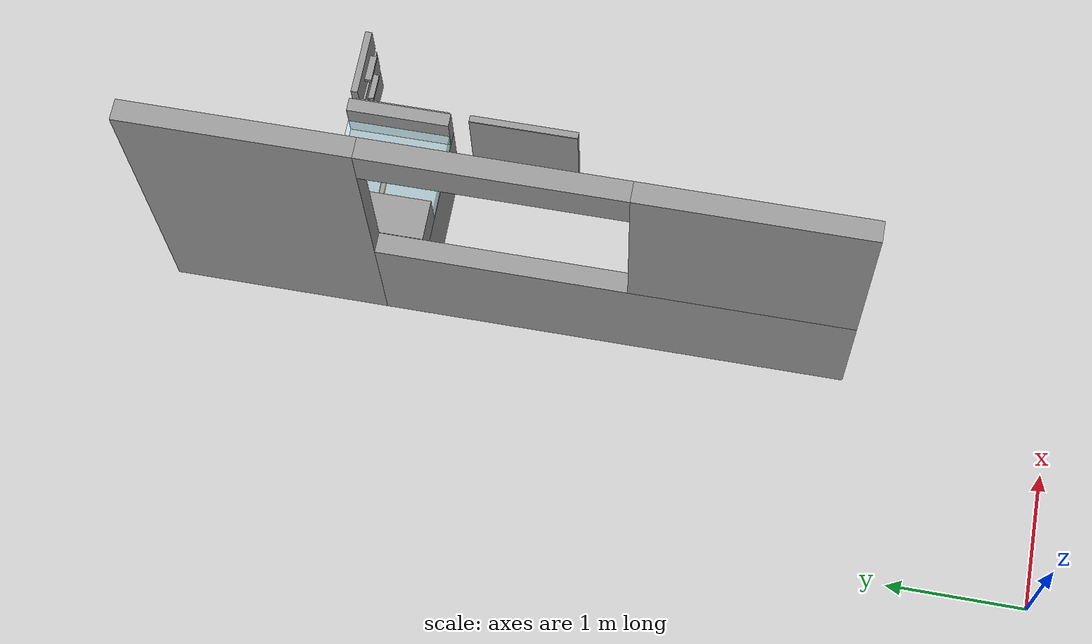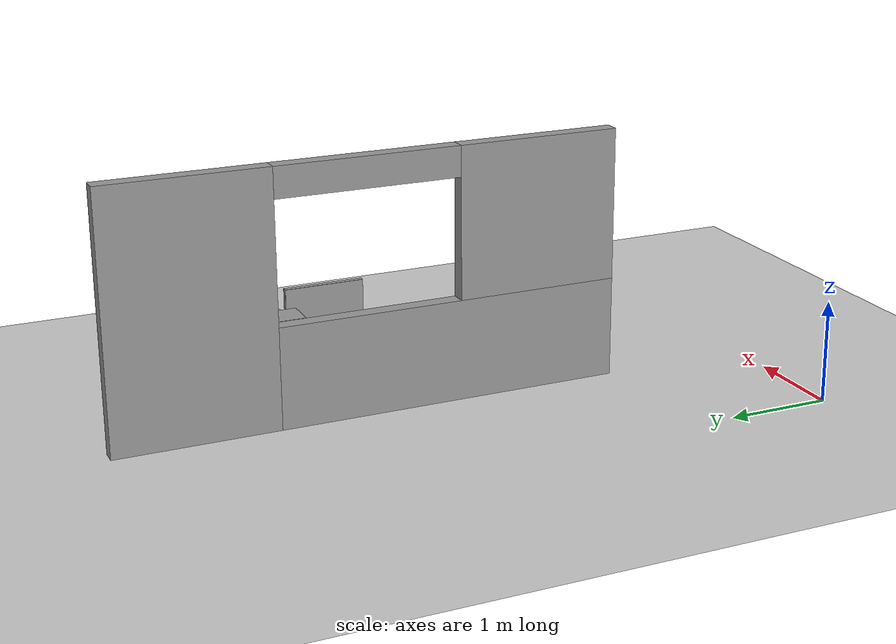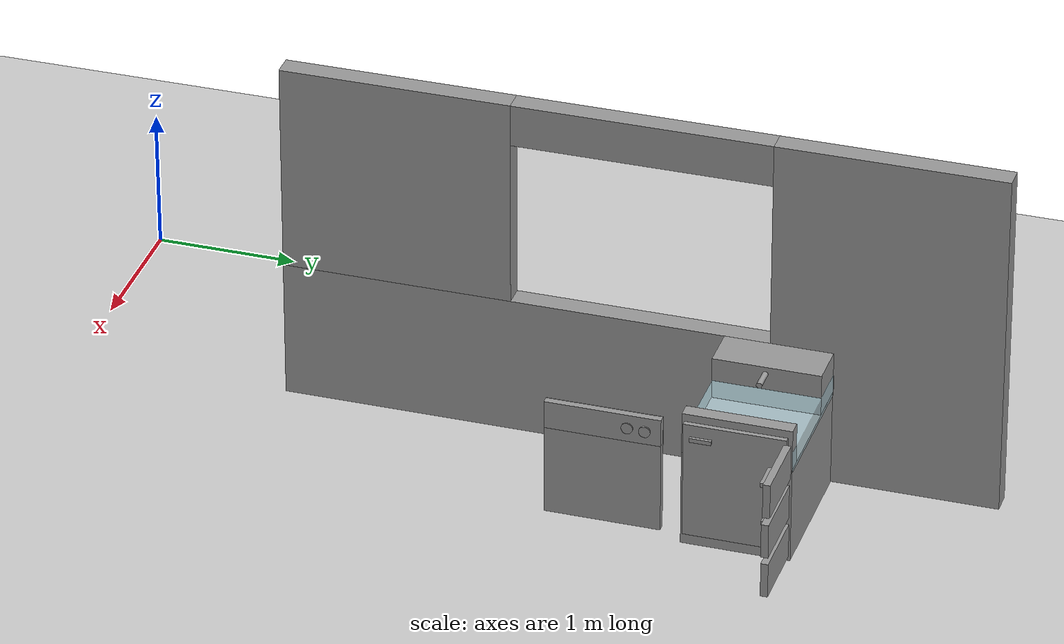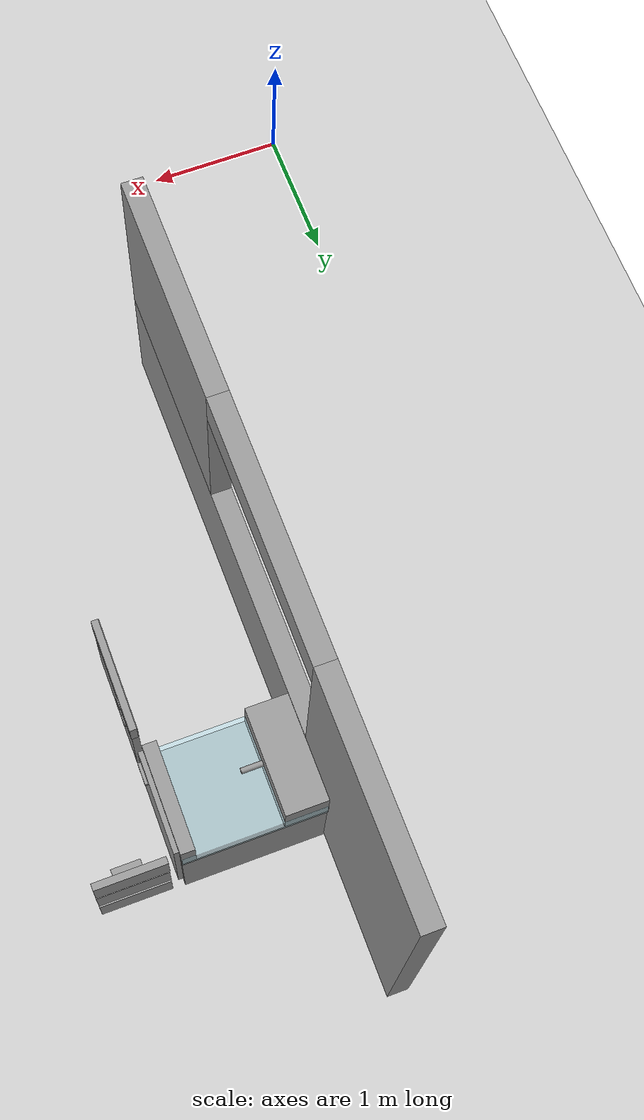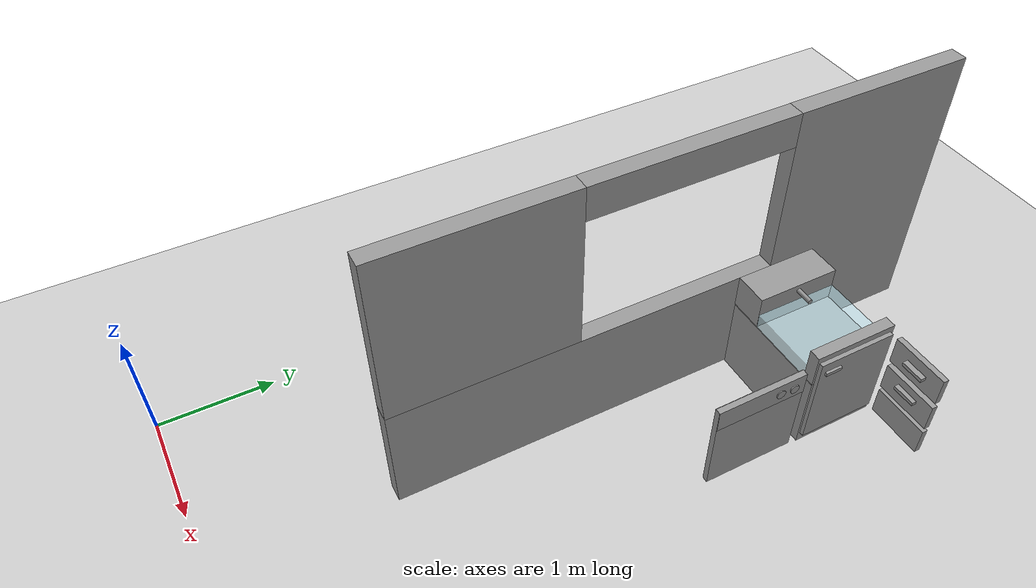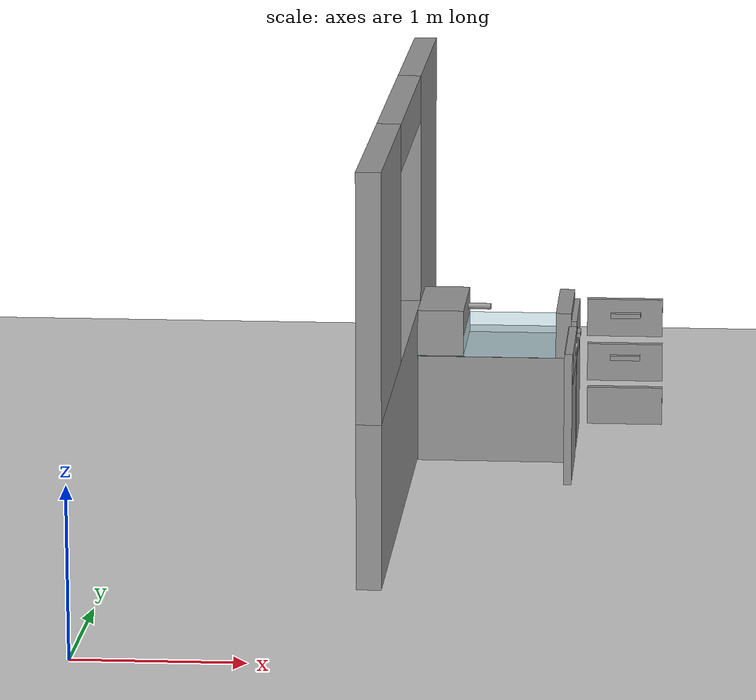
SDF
<sdf version="1.7">
 <world name="default">
  <model name="ground_plane">
   <static>1</static>
   <link name="link">
    <collision name="collision">
     <geometry><plane><normal>0 0 1</normal><size>100 100</size></plane></geometry>
     <surface>
      <contact><collide_bitmask>65535</collide_bitmask></contact>
      <friction><ode><mu>100</mu><mu2>50</mu2></ode></friction>
     </surface>
    </collision>
    <visual name="visual">
     <cast_shadows>0</cast_shadows>
     <geometry><plane><normal>0 0 1</normal><size>100 100</size></plane></geometry>
     <material>
      <script><uri>file://media/materials/scripts/gazebo.material</uri><name>Gazebo/Grey</name></script>
     </material>
    </visual>
   </link>
  </model>
  <model name="my_building_p4">
   <link name="Wall_42">
    <pose>1.575 1.04008 0 0 0 -1.5708</pose>
    <visual name="Wall_42_Visual_2">
     <pose>1.69623 0 1.75 0 -0 0</pose>
     <geometry><box><size>1.60754 0.15 1.5</size></box></geometry>
     <material>
      <script><uri>file://media/materials/scripts/gazebo.material</uri><name>Gazebo/Grey</name></script>
      <ambient>1 1 1 1</ambient>
      <shader type="pixel"/>
     </material>
     <meta><layer>0</layer></meta>
    </visual>
    <visual name="Wall_42_Visual_1">
     <pose>0.796232 0 0.5 0 -0 0</pose>
     <geometry><box><size>3.40754 0.15 1</size></box></geometry>
     <material>
      <script><uri>file://media/materials/scripts/gazebo.material</uri><name>Gazebo/Grey</name></script>
      <ambient>1 1 1 1</ambient>
      <shader type="pixel"/>
     </material>
     <meta><layer>0</layer></meta>
    </visual>
    <visual name="Wall_42_Visual_0">
     <pose>-1.70377 0 1.25 0 -0 0</pose>
     <geometry><box><size>1.59246 0.15 2.5</size></box></geometry>
     <material>
      <script><uri>file://media/materials/scripts/gazebo.material</uri><name>Gazebo/Grey</name></script>
      <ambient>1 1 1 1</ambient>
      <shader type="pixel"/>
     </material>
     <meta><layer>0</layer></meta>
    </visual>
    <visual name="Wall_42_Visual_3">
     <pose>-0.007537 0 2.35 0 -0 0</pose>
     <geometry><box><size>1.8 0.15 0.3</size></box></geometry>
     <material>
      <script><uri>file://media/materials/scripts/gazebo.material</uri><name>Gazebo/Grey</name></script>
      <ambient>1 1 1 1</ambient>
      <shader type="pixel"/>
     </material>
     <meta><layer>0</layer></meta>
    </visual>
    <collision name="Wall_42_Collision_1">
     <pose>0.796232 0 0.5 0 -0 0</pose>
     <geometry><box><size>3.40754 0.15 1</size></box></geometry>
     <surface>
      <friction>
       <ode><mu>1</mu><mu2>1</mu2><fdir1>0 0 0</fdir1><slip1>0</slip1><slip2>0</slip2></ode>
       <torsional>
        <coefficient>1</coefficient>
        <patch_radius>0</patch_radius>
        <surface_radius>0</surface_radius>
        <use_patch_radius>1</use_patch_radius>
        <ode><slip>0</slip></ode>
       </torsional>
      </friction>
      <bounce><restitution_coefficient>0</restitution_coefficient><threshold>1e+06</threshold></bounce>
      <contact>
       <collide_without_contact>0</collide_without_contact>
       <collide_without_contact_bitmask>1</collide_without_contact_bitmask>
       <collide_bitmask>1</collide_bitmask>
       <ode>
        <soft_cfm>0</soft_cfm>
        <soft_erp>0.2</soft_erp>
        <kp>1e+13</kp>
        <kd>1</kd>
        <max_vel>0.01</max_vel>
        <min_depth>0</min_depth>
       </ode>
       <bullet>
        <split_impulse>1</split_impulse>
        <split_impulse_penetration_threshold>-0.01</split_impulse_penetration_threshold>
        <soft_cfm>0</soft_cfm>
        <soft_erp>0.2</soft_erp>
        <kp>1e+13</kp>
        <kd>1</kd>
       </bullet>
      </contact>
     </surface>
    </collision>
    <collision name="Wall_42_Collision_0">
     <pose>-1.70377 0 1.25 0 -0 0</pose>
     <geometry><box><size>1.59246 0.15 2.5</size></box></geometry>
     <surface>
      <friction>
       <ode><mu>1</mu><mu2>1</mu2><fdir1>0 0 0</fdir1><slip1>0</slip1><slip2>0</slip2></ode>
       <torsional>
        <coefficient>1</coefficient>
        <patch_radius>0</patch_radius>
        <surface_radius>0</surface_radius>
        <use_patch_radius>1</use_patch_radius>
        <ode><slip>0</slip></ode>
       </torsional>
      </friction>
      <bounce><restitution_coefficient>0</restitution_coefficient><threshold>1e+06</threshold></bounce>
      <contact>
       <collide_without_contact>0</collide_without_contact>
       <collide_without_contact_bitmask>1</collide_without_contact_bitmask>
       <collide_bitmask>1</collide_bitmask>
       <ode>
        <soft_cfm>0</soft_cfm>
        <soft_erp>0.2</soft_erp>
        <kp>1e+13</kp>
        <kd>1</kd>
        <max_vel>0.01</max_vel>
        <min_depth>0</min_depth>
       </ode>
       <bullet>
        <split_impulse>1</split_impulse>
        <split_impulse_penetration_threshold>-0.01</split_impulse_penetration_threshold>
        <soft_cfm>0</soft_cfm>
        <soft_erp>0.2</soft_erp>
        <kp>1e+13</kp>
        <kd>1</kd>
       </bullet>
      </contact>
     </surface>
    </collision>
    <collision name="Wall_42_Collision_2">
     <pose>1.69623 0 1.75 0 -0 0</pose>
     <geometry><box><size>1.60754 0.15 1.5</size></box></geometry>
     <surface>
      <friction>
       <ode><mu>1</mu><mu2>1</mu2><fdir1>0 0 0</fdir1><slip1>0</slip1><slip2>0</slip2></ode>
       <torsional>
        <coefficient>1</coefficient>
        <patch_radius>0</patch_radius>
        <surface_radius>0</surface_radius>
        <use_patch_radius>1</use_patch_radius>
        <ode><slip>0</slip></ode>
       </torsional>
      </friction>
      <bounce><restitution_coefficient>0</restitution_coefficient><threshold>1e+06</threshold></bounce>
      <contact>
       <collide_without_contact>0</collide_without_contact>
       <collide_without_contact_bitmask>1</collide_without_contact_bitmask>
       <collide_bitmask>1</collide_bitmask>
       <ode>
        <soft_cfm>0</soft_cfm>
        <soft_erp>0.2</soft_erp>
        <kp>1e+13</kp>
        <kd>1</kd>
        <max_vel>0.01</max_vel>
        <min_depth>0</min_depth>
       </ode>
       <bullet>
        <split_impulse>1</split_impulse>
        <split_impulse_penetration_threshold>-0.01</split_impulse_penetration_threshold>
        <soft_cfm>0</soft_cfm>
        <soft_erp>0.2</soft_erp>
        <kp>1e+13</kp>
        <kd>1</kd>
       </bullet>
      </contact>
     </surface>
    </collision>
    <collision name="Wall_42_Collision_3">
     <pose>-0.007537 0 2.35 0 -0 0</pose>
     <geometry><box><size>1.8 0.15 0.3</size></box></geometry>
     <surface>
      <friction>
       <ode><mu>1</mu><mu2>1</mu2><fdir1>0 0 0</fdir1><slip1>0</slip1><slip2>0</slip2></ode>
       <torsional>
        <coefficient>1</coefficient>
        <patch_radius>0</patch_radius>
        <surface_radius>0</surface_radius>
        <use_patch_radius>1</use_patch_radius>
        <ode><slip>0</slip></ode>
       </torsional>
      </friction>
      <bounce><restitution_coefficient>0</restitution_coefficient><threshold>1e+06</threshold></bounce>
      <contact>
       <collide_without_contact>0</collide_without_contact>
       <collide_without_contact_bitmask>1</collide_without_contact_bitmask>
       <collide_bitmask>1</collide_bitmask>
       <ode>
        <soft_cfm>0</soft_cfm>
        <soft_erp>0.2</soft_erp>
        <kp>1e+13</kp>
        <kd>1</kd>
        <max_vel>0.01</max_vel>
        <min_depth>0</min_depth>
       </ode>
       <bullet>
        <split_impulse>1</split_impulse>
        <split_impulse_penetration_threshold>-0.01</split_impulse_penetration_threshold>
        <soft_cfm>0</soft_cfm>
        <soft_erp>0.2</soft_erp>
        <kp>1e+13</kp>
        <kd>1</kd>
       </bullet>
      </contact>
     </surface>
    </collision>
   </link>
   <static>1</static>
   <pose>-0.017657 2.964 0 0 -0 0</pose>
  </model>
  <model name="my_kitchen">
   <link name="link_0">
    <inertial>
     <mass>1</mass>
     <inertia><ixx>0.145833</ixx><ixy>0</ixy><ixz>0</ixz><iyy>0.145833</iyy><iyz>0</iyz><izz>0.125</izz></inertia>
    </inertial>
    <pose>-0.465747 -1.6095 0.842537 0 -0 0</pose>
    <visual name="visual">
     <pose>0 0 0 0 1.5707 0</pose>
     <geometry><cylinder><radius>0.04</radius><length>0.01</length></cylinder></geometry>
     <material>
      <lighting>1</lighting>
      <script><uri>file://media/materials/scripts/gazebo.material</uri><name>Gazebo/Grey</name></script>
      <shader type="pixel"><normal_map>__default__</normal_map></shader>
      <ambient>0.9 0.9 0.9 1</ambient>
      <diffuse>0.9 0.9 0.9 1</diffuse>
      <specular>0.01 0.01 0.01 1</specular>
      <emissive>0 0 0 1</emissive>
     </material>
    </visual>
    <collision name="collision">
     <pose>0 0 0 0 1.5707 0</pose>
     <geometry><cylinder><radius>0.04</radius><length>0.01</length></cylinder></geometry>
     <surface>
      <friction>
       <ode><mu>1</mu><mu2>1</mu2><fdir1>0 0 0</fdir1><slip1>0</slip1><slip2>0</slip2></ode>
       <torsional>
        <coefficient>1</coefficient>
        <patch_radius>0</patch_radius>
        <surface_radius>0</surface_radius>
        <use_patch_radius>1</use_patch_radius>
        <ode><slip>0</slip></ode>
       </torsional>
      </friction>
      <bounce><restitution_coefficient>0</restitution_coefficient><threshold>1e+06</threshold></bounce>
      <contact>
       <collide_without_contact>0</collide_without_contact>
       <collide_without_contact_bitmask>1</collide_without_contact_bitmask>
       <collide_bitmask>1</collide_bitmask>
       <ode>
        <soft_cfm>0</soft_cfm>
        <soft_erp>0.2</soft_erp>
        <kp>1e+13</kp>
        <kd>1</kd>
        <max_vel>0.01</max_vel>
        <min_depth>0</min_depth>
       </ode>
       <bullet>
        <split_impulse>1</split_impulse>
        <split_impulse_penetration_threshold>-0.01</split_impulse_penetration_threshold>
        <soft_cfm>0</soft_cfm>
        <soft_erp>0.2</soft_erp>
        <kp>1e+13</kp>
        <kd>1</kd>
       </bullet>
      </contact>
     </surface>
    </collision>
   </link>
   <link name="link_0_clone">
    <inertial>
     <mass>1</mass>
     <inertia><ixx>0.145833</ixx><ixy>0</ixy><ixz>0</ixz><iyy>0.145833</iyy><iyz>0</iyz><izz>0.125</izz></inertia>
    </inertial>
    <pose>-1.12966 -0.882077 0.956076 0 -0 0</pose>
    <gravity>0</gravity>
    <visual name="visual">
     <pose>0 0 0 0 1.5707 0</pose>
     <geometry><cylinder><radius>0.02</radius><length>0.15</length></cylinder></geometry>
     <material>
      <lighting>1</lighting>
      <script><uri>file://media/materials/scripts/gazebo.material</uri><name>Gazebo/Grey</name></script>
      <shader type="pixel"><normal_map>__default__</normal_map></shader>
      <ambient>0.2 0.2 0.2 1</ambient>
      <diffuse>0.2 0.2 0.2 1</diffuse>
      <specular>0.01 0.01 0.01 1</specular>
      <emissive>0 0 0 1</emissive>
     </material>
    </visual>
    <collision name="collision">
     <pose>0 0 0 0 1.5707 0</pose>
     <geometry><cylinder><radius>0.02</radius><length>0.15</length></cylinder></geometry>
     <surface>
      <friction>
       <ode><mu>1</mu><mu2>1</mu2><fdir1>0 0 0</fdir1><slip1>0</slip1><slip2>0</slip2></ode>
       <torsional>
        <coefficient>1</coefficient>
        <patch_radius>0</patch_radius>
        <surface_radius>0</surface_radius>
        <use_patch_radius>1</use_patch_radius>
        <ode><slip>0</slip></ode>
       </torsional>
      </friction>
      <bounce><restitution_coefficient>0</restitution_coefficient><threshold>1e+06</threshold></bounce>
      <contact>
       <collide_without_contact>0</collide_without_contact>
       <collide_without_contact_bitmask>1</collide_without_contact_bitmask>
       <collide_bitmask>1</collide_bitmask>
       <ode>
        <soft_cfm>0</soft_cfm>
        <soft_erp>0.2</soft_erp>
        <kp>1e+13</kp>
        <kd>1</kd>
        <max_vel>0.01</max_vel>
        <min_depth>0</min_depth>
       </ode>
       <bullet>
        <split_impulse>1</split_impulse>
        <split_impulse_penetration_threshold>-0.01</split_impulse_penetration_threshold>
        <soft_cfm>0</soft_cfm>
        <soft_erp>0.2</soft_erp>
        <kp>1e+13</kp>
        <kd>1</kd>
       </bullet>
      </contact>
     </surface>
    </collision>
   </link>
   <link name="link_0_clone_0">
    <inertial>
     <mass>1</mass>
     <inertia><ixx>0.145833</ixx><ixy>0</ixy><ixz>0</ixz><iyy>0.145833</iyy><iyz>0</iyz><izz>0.125</izz></inertia>
    </inertial>
    <pose>-0.459347 -1.48795 0.840731 0 -0 0</pose>
    <visual name="visual">
     <pose>0 0 0 0 1.5707 0</pose>
     <geometry><cylinder><radius>0.04</radius><length>0.01</length></cylinder></geometry>
     <material>
      <lighting>1</lighting>
      <script><uri>file://media/materials/scripts/gazebo.material</uri><name>Gazebo/Grey</name></script>
      <shader type="pixel"><normal_map>__default__</normal_map></shader>
      <ambient>0.9 0.9 0.9 1</ambient>
      <diffuse>0.9 0.9 0.9 1</diffuse>
      <specular>0.01 0.01 0.01 1</specular>
      <emissive>0 0 0 1</emissive>
     </material>
    </visual>
    <collision name="collision">
     <pose>0 0 0 0 1.5707 0</pose>
     <geometry><cylinder><radius>0.04</radius><length>0.01</length></cylinder></geometry>
     <surface>
      <friction>
       <ode><mu>1</mu><mu2>1</mu2><fdir1>0 0 0</fdir1><slip1>0</slip1><slip2>0</slip2></ode>
       <torsional>
        <coefficient>1</coefficient>
        <patch_radius>0</patch_radius>
        <surface_radius>0</surface_radius>
        <use_patch_radius>1</use_patch_radius>
        <ode><slip>0</slip></ode>
       </torsional>
      </friction>
      <bounce><restitution_coefficient>0</restitution_coefficient><threshold>1e+06</threshold></bounce>
      <contact>
       <collide_without_contact>0</collide_without_contact>
       <collide_without_contact_bitmask>1</collide_without_contact_bitmask>
       <collide_bitmask>1</collide_bitmask>
       <ode>
        <soft_cfm>0</soft_cfm>
        <soft_erp>0.2</soft_erp>
        <kp>1e+13</kp>
        <kd>1</kd>
        <max_vel>0.01</max_vel>
        <min_depth>0</min_depth>
       </ode>
       <bullet>
        <split_impulse>1</split_impulse>
        <split_impulse_penetration_threshold>-0.01</split_impulse_penetration_threshold>
        <soft_cfm>0</soft_cfm>
        <soft_erp>0.2</soft_erp>
        <kp>1e+13</kp>
        <kd>1</kd>
       </bullet>
      </contact>
     </surface>
    </collision>
   </link>
   <link name="link_clone_clone">
    <inertial>
     <mass>1</mass>
     <inertia>
      <ixx>0.166667</ixx>
      <ixy>0</ixy>
      <ixz>0</ixz>
      <iyy>0.166667</iyy>
      <iyz>0</iyz>
      <izz>0.166667</izz>
     </inertia>
    </inertial>
    <pose>-1.36532 -0.875399 0.352062 0 -0 0</pose>
    <visual name="visual">
     <geometry><box><size>0.3 0.75 0.3</size></box></geometry>
     <material>
      <script><name>Gazebo/Grey</name><uri>file://media/materials/scripts/gazebo.material</uri></script>
      <shader type="pixel"><normal_map>__default__</normal_map></shader>
      <ambient>0.8 0.8 0.8 1</ambient>
      <diffuse>0.65 0.65 0.65 1</diffuse>
      <specular>0.01 0.01 0.01 1</specular>
      <emissive>0 0 0 1</emissive>
     </material>
     <pose>0 0 0.5 0 -0 0</pose>
    </visual>
    <collision name="collision">
     <pose>0 0 0.5 0 -0 0</pose>
     <geometry><box><size>0.3 0.75 0.3</size></box></geometry>
     <surface>
      <friction>
       <ode><mu>1</mu><mu2>1</mu2><fdir1>0 0 0</fdir1><slip1>0</slip1><slip2>0</slip2></ode>
       <torsional>
        <coefficient>1</coefficient>
        <patch_radius>0</patch_radius>
        <surface_radius>0</surface_radius>
        <use_patch_radius>1</use_patch_radius>
        <ode><slip>0</slip></ode>
       </torsional>
      </friction>
      <bounce><restitution_coefficient>0</restitution_coefficient><threshold>1e+06</threshold></bounce>
      <contact>
       <collide_without_contact>0</collide_without_contact>
       <collide_without_contact_bitmask>1</collide_without_contact_bitmask>
       <collide_bitmask>1</collide_bitmask>
       <ode>
        <soft_cfm>0</soft_cfm>
        <soft_erp>0.2</soft_erp>
        <kp>1e+13</kp>
        <kd>1</kd>
        <max_vel>0.01</max_vel>
        <min_depth>0</min_depth>
       </ode>
       <bullet>
        <split_impulse>1</split_impulse>
        <split_impulse_penetration_threshold>-0.01</split_impulse_penetration_threshold>
        <soft_cfm>0</soft_cfm>
        <soft_erp>0.2</soft_erp>
        <kp>1e+13</kp>
        <kd>1</kd>
       </bullet>
      </contact>
     </surface>
    </collision>
   </link>
   <link name="link_clone_clone_clone">
    <inertial>
     <mass>1</mass>
     <inertia>
      <ixx>0.166667</ixx>
      <ixy>0</ixy>
      <ixz>0</ixz>
      <iyy>0.166667</iyy>
      <iyz>0</iyz>
      <izz>0.166667</izz>
     </inertia>
    </inertial>
    <pose>-1.01121 -0.87639 -0.152519 0 -0 0</pose>
    <visual name="visual">
     <geometry><box><size>1 0.75 0.7</size></box></geometry>
     <material>
      <script><name>Gazebo/Grey</name><uri>file://media/materials/scripts/gazebo.material</uri></script>
      <shader type="pixel"><normal_map>__default__</normal_map></shader>
      <ambient>0.8 0.8 0.8 1</ambient>
      <diffuse>0.65 0.65 0.65 1</diffuse>
      <specular>0.01 0.01 0.01 1</specular>
      <emissive>0 0 0 1</emissive>
     </material>
     <pose>0 0 0.5 0 -0 0</pose>
    </visual>
    <collision name="collision">
     <pose>0 0 0.5 0 -0 0</pose>
     <geometry><box><size>1 0.75 0.7</size></box></geometry>
     <surface>
      <friction>
       <ode><mu>1</mu><mu2>1</mu2><fdir1>0 0 0</fdir1><slip1>0</slip1><slip2>0</slip2></ode>
       <torsional>
        <coefficient>1</coefficient>
        <patch_radius>0</patch_radius>
        <surface_radius>0</surface_radius>
        <use_patch_radius>1</use_patch_radius>
        <ode><slip>0</slip></ode>
       </torsional>
      </friction>
      <bounce><restitution_coefficient>0</restitution_coefficient><threshold>1e+06</threshold></bounce>
      <contact>
       <collide_without_contact>0</collide_without_contact>
       <collide_without_contact_bitmask>1</collide_without_contact_bitmask>
       <collide_bitmask>1</collide_bitmask>
       <ode>
        <soft_cfm>0</soft_cfm>
        <soft_erp>0.2</soft_erp>
        <kp>1e+13</kp>
        <kd>1</kd>
        <max_vel>0.01</max_vel>
        <min_depth>0</min_depth>
       </ode>
       <bullet>
        <split_impulse>1</split_impulse>
        <split_impulse_penetration_threshold>-0.01</split_impulse_penetration_threshold>
        <soft_cfm>0</soft_cfm>
        <soft_erp>0.2</soft_erp>
        <kp>1e+13</kp>
        <kd>1</kd>
       </bullet>
      </contact>
     </surface>
    </collision>
   </link>
   <link name="link_clone_clone_clone_0">
    <inertial>
     <mass>1</mass>
     <inertia>
      <ixx>0.166667</ixx>
      <ixy>0</ixy>
      <ixz>0</ixz>
      <iyy>0.166667</iyy>
      <iyz>0</iyz>
      <izz>0.166667</izz>
     </inertia>
    </inertial>
    <pose>-0.56153 -0.875379 0.346728 0 -0 0</pose>
    <gravity>0</gravity>
    <visual name="visual">
     <geometry><box><size>0.1 0.75 0.3</size></box></geometry>
     <material>
      <script><name>Gazebo/Grey</name><uri>file://media/materials/scripts/gazebo.material</uri></script>
      <shader type="pixel"><normal_map>__default__</normal_map></shader>
      <ambient>0.8 0.8 0.8 1</ambient>
      <diffuse>0.65 0.65 0.65 1</diffuse>
      <specular>0.01 0.01 0.01 1</specular>
      <emissive>0 0 0 1</emissive>
     </material>
     <pose>0 0 0.5 0 -0 0</pose>
    </visual>
    <collision name="collision">
     <pose>0 0 0.5 0 -0 0</pose>
     <geometry><box><size>0.1 0.75 0.3</size></box></geometry>
     <surface>
      <friction>
       <ode><mu>1</mu><mu2>1</mu2><fdir1>0 0 0</fdir1><slip1>0</slip1><slip2>0</slip2></ode>
       <torsional>
        <coefficient>1</coefficient>
        <patch_radius>0</patch_radius>
        <surface_radius>0</surface_radius>
        <use_patch_radius>1</use_patch_radius>
        <ode><slip>0</slip></ode>
       </torsional>
      </friction>
      <bounce><restitution_coefficient>0</restitution_coefficient><threshold>1e+06</threshold></bounce>
      <contact>
       <collide_without_contact>0</collide_without_contact>
       <collide_without_contact_bitmask>1</collide_without_contact_bitmask>
       <collide_bitmask>1</collide_bitmask>
       <ode>
        <soft_cfm>0</soft_cfm>
        <soft_erp>0.2</soft_erp>
        <kp>1e+13</kp>
        <kd>1</kd>
        <max_vel>0.01</max_vel>
        <min_depth>0</min_depth>
       </ode>
       <bullet>
        <split_impulse>1</split_impulse>
        <split_impulse_penetration_threshold>-0.01</split_impulse_penetration_threshold>
        <soft_cfm>0</soft_cfm>
        <soft_erp>0.2</soft_erp>
        <kp>1e+13</kp>
        <kd>1</kd>
       </bullet>
      </contact>
     </surface>
    </collision>
   </link>
   <link name="link_clone_clone_clone_0_clone_clone_clone">
    <inertial>
     <mass>1</mass>
     <inertia>
      <ixx>0.166667</ixx>
      <ixy>0</ixy>
      <ixz>0</ixz>
      <iyy>0.166667</iyy>
      <iyz>0</iyz>
      <izz>0.166667</izz>
     </inertia>
    </inertial>
    <pose>-0.4781 -1.10993 0.338029 0 -0 0</pose>
    <gravity>0</gravity>
    <visual name="visual">
     <geometry><box><size>0.05 0.15 0.03</size></box></geometry>
     <material>
      <script><name>Gazebo/Grey</name><uri>file://media/materials/scripts/gazebo.material</uri></script>
      <shader type="pixel"><normal_map>__default__</normal_map></shader>
      <ambient>0.9 0.9 0.9 1</ambient>
      <diffuse>0.8 0.8 0.8 1</diffuse>
      <specular>0.01 0.01 0.01 1</specular>
      <emissive>0 0 0 1</emissive>
     </material>
     <pose>0 0 0.5 0 -0 0</pose>
    </visual>
    <collision name="collision">
     <pose>0 0 0.5 0 -0 0</pose>
     <geometry><box><size>0.05 0.15 0.03</size></box></geometry>
     <surface>
      <friction>
       <ode><mu>1</mu><mu2>1</mu2><fdir1>0 0 0</fdir1><slip1>0</slip1><slip2>0</slip2></ode>
       <torsional>
        <coefficient>1</coefficient>
        <patch_radius>0</patch_radius>
        <surface_radius>0</surface_radius>
        <use_patch_radius>1</use_patch_radius>
        <ode><slip>0</slip></ode>
       </torsional>
      </friction>
      <bounce><restitution_coefficient>0</restitution_coefficient><threshold>1e+06</threshold></bounce>
      <contact>
       <collide_without_contact>0</collide_without_contact>
       <collide_without_contact_bitmask>1</collide_without_contact_bitmask>
       <collide_bitmask>1</collide_bitmask>
       <ode>
        <soft_cfm>0</soft_cfm>
        <soft_erp>0.2</soft_erp>
        <kp>1e+13</kp>
        <kd>1</kd>
        <max_vel>0.01</max_vel>
        <min_depth>0</min_depth>
       </ode>
       <bullet>
        <split_impulse>1</split_impulse>
        <split_impulse_penetration_threshold>-0.01</split_impulse_penetration_threshold>
        <soft_cfm>0</soft_cfm>
        <soft_erp>0.2</soft_erp>
        <kp>1e+13</kp>
        <kd>1</kd>
       </bullet>
      </contact>
     </surface>
    </collision>
   </link>
   <link name="link_clone_clone_clone_0_clone_clone_clone_0">
    <inertial>
     <mass>1</mass>
     <inertia>
      <ixx>0.166667</ixx>
      <ixy>0</ixy>
      <ixz>0</ixz>
      <iyy>0.166667</iyy>
      <iyz>0</iyz>
      <izz>0.166667</izz>
     </inertia>
    </inertial>
    <pose>-0.499193 -1.7796 0.016041 0 -0 0</pose>
    <gravity>0</gravity>
    <visual name="visual">
     <geometry><box><size>0.05 0.8 0.85</size></box></geometry>
     <material>
      <script><name>Gazebo/Grey</name><uri>file://media/materials/scripts/gazebo.material</uri></script>
      <shader type="pixel"><normal_map>__default__</normal_map></shader>
      <ambient>0.9 0.9 0.9 1</ambient>
      <diffuse>0.9 0.9 0.9 1</diffuse>
      <specular>0.01 0.01 0.01 1</specular>
      <emissive>0 0 0 1</emissive>
     </material>
     <pose>0 0 0.5 0 -0 0</pose>
    </visual>
    <collision name="collision">
     <pose>0 0 0.5 0 -0 0</pose>
     <geometry><box><size>0.05 0.8 0.85</size></box></geometry>
     <surface>
      <friction>
       <ode><mu>1</mu><mu2>1</mu2><fdir1>0 0 0</fdir1><slip1>0</slip1><slip2>0</slip2></ode>
       <torsional>
        <coefficient>1</coefficient>
        <patch_radius>0</patch_radius>
        <surface_radius>0</surface_radius>
        <use_patch_radius>1</use_patch_radius>
        <ode><slip>0</slip></ode>
       </torsional>
      </friction>
      <bounce><restitution_coefficient>0</restitution_coefficient><threshold>1e+06</threshold></bounce>
      <contact>
       <collide_without_contact>0</collide_without_contact>
       <collide_without_contact_bitmask>1</collide_without_contact_bitmask>
       <collide_bitmask>1</collide_bitmask>
       <ode>
        <soft_cfm>0</soft_cfm>
        <soft_erp>0.2</soft_erp>
        <kp>1e+13</kp>
        <kd>1</kd>
        <max_vel>0.01</max_vel>
        <min_depth>0</min_depth>
       </ode>
       <bullet>
        <split_impulse>1</split_impulse>
        <split_impulse_penetration_threshold>-0.01</split_impulse_penetration_threshold>
        <soft_cfm>0</soft_cfm>
        <soft_erp>0.2</soft_erp>
        <kp>1e+13</kp>
        <kd>1</kd>
       </bullet>
      </contact>
     </surface>
    </collision>
   </link>
   <link name="link_clone_clone_clone_0_clone_clone_clone_0_clone">
    <inertial>
     <mass>1</mass>
     <inertia>
      <ixx>0.166667</ixx>
      <ixy>0</ixy>
      <ixz>0</ixz>
      <iyy>0.166667</iyy>
      <iyz>0</iyz>
      <izz>0.166667</izz>
     </inertia>
    </inertial>
    <pose>-0.50046 -0.88146 0.016041 0 -0 0</pose>
    <visual name="visual">
     <geometry><box><size>0.05 0.7 0.85</size></box></geometry>
     <material>
      <script><name>Gazebo/Grey</name><uri>file://media/materials/scripts/gazebo.material</uri></script>
      <shader type="pixel"><normal_map>__default__</normal_map></shader>
      <ambient>0.4 0.4 0.4 1</ambient>
      <diffuse>0.4 0.4 0.4 1</diffuse>
      <specular>0.01 0.01 0.01 1</specular>
      <emissive>0 0 0 1</emissive>
     </material>
     <pose>0 0 0.5 0 -0 0</pose>
    </visual>
    <collision name="collision">
     <pose>0 0 0.5 0 -0 0</pose>
     <geometry><box><size>0.05 0.7 0.85</size></box></geometry>
     <surface>
      <friction>
       <ode><mu>1</mu><mu2>1</mu2><fdir1>0 0 0</fdir1><slip1>0</slip1><slip2>0</slip2></ode>
       <torsional>
        <coefficient>1</coefficient>
        <patch_radius>0</patch_radius>
        <surface_radius>0</surface_radius>
        <use_patch_radius>1</use_patch_radius>
        <ode><slip>0</slip></ode>
       </torsional>
      </friction>
      <bounce><restitution_coefficient>0</restitution_coefficient><threshold>1e+06</threshold></bounce>
      <contact>
       <collide_without_contact>0</collide_without_contact>
       <collide_without_contact_bitmask>1</collide_without_contact_bitmask>
       <collide_bitmask>1</collide_bitmask>
       <ode>
        <soft_cfm>0</soft_cfm>
        <soft_erp>0.2</soft_erp>
        <kp>1e+13</kp>
        <kd>1</kd>
        <max_vel>0.01</max_vel>
        <min_depth>0</min_depth>
       </ode>
       <bullet>
        <split_impulse>1</split_impulse>
        <split_impulse_penetration_threshold>-0.01</split_impulse_penetration_threshold>
        <soft_cfm>0</soft_cfm>
        <soft_erp>0.2</soft_erp>
        <kp>1e+13</kp>
        <kd>1</kd>
       </bullet>
      </contact>
     </surface>
    </collision>
   </link>
   <link name="link_clone_clone_clone_0_clone_clone_clone_0_clone_clone_clone_0_clone_0">
    <inertial>
     <mass>1</mass>
     <inertia>
      <ixx>0.166667</ixx>
      <ixy>0</ixy>
      <ixz>0</ixz>
      <iyy>0.166667</iyy>
      <iyz>0</iyz>
      <izz>0.166667</izz>
     </inertia>
    </inertial>
    <pose>-0.174147 -0.517268 0.010923 0 -0 0</pose>
    <gravity>0</gravity>
    <visual name="visual">
     <geometry><box><size>0.05 0.5 0.25</size></box></geometry>
     <material>
      <script><name>Gazebo/Grey</name><uri>file://media/materials/scripts/gazebo.material</uri></script>
      <shader type="pixel"><normal_map>__default__</normal_map></shader>
      <ambient>0.4 0.4 0.4 1</ambient>
      <diffuse>0.4 0.4 0.4 1</diffuse>
      <specular>0.01 0.01 0.01 1</specular>
      <emissive>0 0 0 1</emissive>
     </material>
     <pose>0 0 0.5 0 -0 1.5707</pose>
    </visual>
    <collision name="collision">
     <pose>0 0 0.5 0 -0 1.5707</pose>
     <geometry><box><size>0.05 0.5 0.25</size></box></geometry>
     <surface>
      <friction>
       <ode><mu>1</mu><mu2>1</mu2><fdir1>0 0 0</fdir1><slip1>0</slip1><slip2>0</slip2></ode>
       <torsional>
        <coefficient>1</coefficient>
        <patch_radius>0</patch_radius>
        <surface_radius>0</surface_radius>
        <use_patch_radius>1</use_patch_radius>
        <ode><slip>0</slip></ode>
       </torsional>
      </friction>
      <bounce><restitution_coefficient>0</restitution_coefficient><threshold>1e+06</threshold></bounce>
      <contact>
       <collide_without_contact>0</collide_without_contact>
       <collide_without_contact_bitmask>1</collide_without_contact_bitmask>
       <collide_bitmask>1</collide_bitmask>
       <ode>
        <soft_cfm>0</soft_cfm>
        <soft_erp>0.2</soft_erp>
        <kp>1e+13</kp>
        <kd>1</kd>
        <max_vel>0.01</max_vel>
        <min_depth>0</min_depth>
       </ode>
       <bullet>
        <split_impulse>1</split_impulse>
        <split_impulse_penetration_threshold>-0.01</split_impulse_penetration_threshold>
        <soft_cfm>0</soft_cfm>
        <soft_erp>0.2</soft_erp>
        <kp>1e+13</kp>
        <kd>1</kd>
       </bullet>
      </contact>
     </surface>
    </collision>
   </link>
   <link name="link_clone_clone_clone_0_clone_clone_clone_0_clone_clone_clone_0_clone_0_clone">
    <inertial>
     <mass>1</mass>
     <inertia>
      <ixx>0.166667</ixx>
      <ixy>0</ixy>
      <ixz>0</ixz>
      <iyy>0.166667</iyy>
      <iyz>0</iyz>
      <izz>0.166667</izz>
     </inertia>
    </inertial>
    <pose>-0.172613 -0.514864 -0.287733 0 -0 0</pose>
    <visual name="visual">
     <geometry><box><size>0.05 0.5 0.25</size></box></geometry>
     <material>
      <script><name>Gazebo/Grey</name><uri>file://media/materials/scripts/gazebo.material</uri></script>
      <shader type="pixel"><normal_map>__default__</normal_map></shader>
      <ambient>0.4 0.4 0.4 1</ambient>
      <diffuse>0.4 0.4 0.4 1</diffuse>
      <specular>0.01 0.01 0.01 1</specular>
      <emissive>0 0 0 1</emissive>
     </material>
     <pose>0 0 0.5 0 -0 1.5707</pose>
    </visual>
    <collision name="collision">
     <pose>0 0 0.5 0 -0 1.5707</pose>
     <geometry><box><size>0.05 0.5 0.25</size></box></geometry>
     <surface>
      <friction>
       <ode><mu>1</mu><mu2>1</mu2><fdir1>0 0 0</fdir1><slip1>0</slip1><slip2>0</slip2></ode>
       <torsional>
        <coefficient>1</coefficient>
        <patch_radius>0</patch_radius>
        <surface_radius>0</surface_radius>
        <use_patch_radius>1</use_patch_radius>
        <ode><slip>0</slip></ode>
       </torsional>
      </friction>
      <bounce><restitution_coefficient>0</restitution_coefficient><threshold>1e+06</threshold></bounce>
      <contact>
       <collide_without_contact>0</collide_without_contact>
       <collide_without_contact_bitmask>1</collide_without_contact_bitmask>
       <collide_bitmask>1</collide_bitmask>
       <ode>
        <soft_cfm>0</soft_cfm>
        <soft_erp>0.2</soft_erp>
        <kp>1e+13</kp>
        <kd>1</kd>
        <max_vel>0.01</max_vel>
        <min_depth>0</min_depth>
       </ode>
       <bullet>
        <split_impulse>1</split_impulse>
        <split_impulse_penetration_threshold>-0.01</split_impulse_penetration_threshold>
        <soft_cfm>0</soft_cfm>
        <soft_erp>0.2</soft_erp>
        <kp>1e+13</kp>
        <kd>1</kd>
       </bullet>
      </contact>
     </surface>
    </collision>
   </link>
   <link name="link_clone_clone_clone_0_clone_clone_clone_0_clone_clone_clone_0_clone_0_clone_0">
    <inertial>
     <mass>1</mass>
     <inertia>
      <ixx>0.166667</ixx>
      <ixy>0</ixy>
      <ixz>0</ixz>
      <iyy>0.166667</iyy>
      <iyz>0</iyz>
      <izz>0.166667</izz>
     </inertia>
    </inertial>
    <pose>-0.177001 -0.511923 0.314755 0 -0 0</pose>
    <visual name="visual">
     <geometry><box><size>0.05 0.5 0.25</size></box></geometry>
     <material>
      <script><name>Gazebo/Grey</name><uri>file://media/materials/scripts/gazebo.material</uri></script>
      <shader type="pixel"><normal_map>__default__</normal_map></shader>
      <ambient>0.4 0.4 0.4 1</ambient>
      <diffuse>0.4 0.4 0.4 1</diffuse>
      <specular>0.01 0.01 0.01 1</specular>
      <emissive>0 0 0 1</emissive>
     </material>
     <pose>0 0 0.5 0 -0 1.5707</pose>
    </visual>
    <collision name="collision">
     <pose>0 0 0.5 0 -0 1.5707</pose>
     <geometry><box><size>0.05 0.5 0.25</size></box></geometry>
     <surface>
      <friction>
       <ode><mu>1</mu><mu2>1</mu2><fdir1>0 0 0</fdir1><slip1>0</slip1><slip2>0</slip2></ode>
       <torsional>
        <coefficient>1</coefficient>
        <patch_radius>0</patch_radius>
        <surface_radius>0</surface_radius>
        <use_patch_radius>1</use_patch_radius>
        <ode><slip>0</slip></ode>
       </torsional>
      </friction>
      <bounce><restitution_coefficient>0</restitution_coefficient><threshold>1e+06</threshold></bounce>
      <contact>
       <collide_without_contact>0</collide_without_contact>
       <collide_without_contact_bitmask>1</collide_without_contact_bitmask>
       <collide_bitmask>1</collide_bitmask>
       <ode>
        <soft_cfm>0</soft_cfm>
        <soft_erp>0.2</soft_erp>
        <kp>1e+13</kp>
        <kd>1</kd>
        <max_vel>0.01</max_vel>
        <min_depth>0</min_depth>
       </ode>
       <bullet>
        <split_impulse>1</split_impulse>
        <split_impulse_penetration_threshold>-0.01</split_impulse_penetration_threshold>
        <soft_cfm>0</soft_cfm>
        <soft_erp>0.2</soft_erp>
        <kp>1e+13</kp>
        <kd>1</kd>
       </bullet>
      </contact>
     </surface>
    </collision>
   </link>
   <link name="link_clone_clone_clone_0_clone_clone_clone_1">
    <inertial>
     <mass>1</mass>
     <inertia>
      <ixx>0.166667</ixx>
      <ixy>0</ixy>
      <ixz>0</ixz>
      <iyy>0.166667</iyy>
      <iyz>0</iyz>
      <izz>0.166667</izz>
     </inertia>
    </inertial>
    <pose>-0.494653 -1.77941 0.34131 0 -0 0</pose>
    <visual name="visual">
     <geometry><box><size>0.05 0.8 0.2</size></box></geometry>
     <material>
      <script><name>Gazebo/Grey</name><uri>file://media/materials/scripts/gazebo.material</uri></script>
      <shader type="pixel"><normal_map>__default__</normal_map></shader>
      <ambient>0.4 0.4 0.4 1</ambient>
      <diffuse>0.4 0.4 0.4 1</diffuse>
      <specular>0.01 0.01 0.01 1</specular>
      <emissive>0 0 0 1</emissive>
     </material>
     <pose>0 0 0.5 0 -0 0</pose>
    </visual>
    <collision name="collision">
     <pose>0 0 0.5 0 -0 0</pose>
     <geometry><box><size>0.05 0.8 0.2</size></box></geometry>
     <surface>
      <friction>
       <ode><mu>1</mu><mu2>1</mu2><fdir1>0 0 0</fdir1><slip1>0</slip1><slip2>0</slip2></ode>
       <torsional>
        <coefficient>1</coefficient>
        <patch_radius>0</patch_radius>
        <surface_radius>0</surface_radius>
        <use_patch_radius>1</use_patch_radius>
        <ode><slip>0</slip></ode>
       </torsional>
      </friction>
      <bounce><restitution_coefficient>0</restitution_coefficient><threshold>1e+06</threshold></bounce>
      <contact>
       <collide_without_contact>0</collide_without_contact>
       <collide_without_contact_bitmask>1</collide_without_contact_bitmask>
       <collide_bitmask>1</collide_bitmask>
       <ode>
        <soft_cfm>0</soft_cfm>
        <soft_erp>0.2</soft_erp>
        <kp>1e+13</kp>
        <kd>1</kd>
        <max_vel>0.01</max_vel>
        <min_depth>0</min_depth>
       </ode>
       <bullet>
        <split_impulse>1</split_impulse>
        <split_impulse_penetration_threshold>-0.01</split_impulse_penetration_threshold>
        <soft_cfm>0</soft_cfm>
        <soft_erp>0.2</soft_erp>
        <kp>1e+13</kp>
        <kd>1</kd>
       </bullet>
      </contact>
     </surface>
    </collision>
   </link>
   <link name="link_clone_clone_clone_0_clone_clone_clone_clone_1_clone_0_clone">
    <inertial>
     <mass>1</mass>
     <inertia>
      <ixx>0.166667</ixx>
      <ixy>0</ixy>
      <ixz>0</ixz>
      <iyy>0.166667</iyy>
      <iyz>0</iyz>
      <izz>0.166667</izz>
     </inertia>
    </inertial>
    <pose>-0.172178 -0.559644 0.047956 0 -0 0</pose>
    <gravity>0</gravity>
    <visual name="visual">
     <geometry><box><size>0.05 0.2 0.03</size></box></geometry>
     <material>
      <script><name>Gazebo/Grey</name><uri>file://media/materials/scripts/gazebo.material</uri></script>
      <shader type="pixel"><normal_map>__default__</normal_map></shader>
      <ambient>0.9 0.9 0.9 1</ambient>
      <diffuse>0.8 0.8 0.8 1</diffuse>
      <specular>0.01 0.01 0.01 1</specular>
      <emissive>0 0 0 1</emissive>
     </material>
     <pose>0 0 0.5 0 -0 1.5707</pose>
    </visual>
    <collision name="collision">
     <pose>0 0 0.5 0 -0 1.5707</pose>
     <geometry><box><size>0.05 0.2 0.03</size></box></geometry>
     <surface>
      <friction>
       <ode><mu>1</mu><mu2>1</mu2><fdir1>0 0 0</fdir1><slip1>0</slip1><slip2>0</slip2></ode>
       <torsional>
        <coefficient>1</coefficient>
        <patch_radius>0</patch_radius>
        <surface_radius>0</surface_radius>
        <use_patch_radius>1</use_patch_radius>
        <ode><slip>0</slip></ode>
       </torsional>
      </friction>
      <bounce><restitution_coefficient>0</restitution_coefficient><threshold>1e+06</threshold></bounce>
      <contact>
       <collide_without_contact>0</collide_without_contact>
       <collide_without_contact_bitmask>1</collide_without_contact_bitmask>
       <collide_bitmask>1</collide_bitmask>
       <ode>
        <soft_cfm>0</soft_cfm>
        <soft_erp>0.2</soft_erp>
        <kp>1e+13</kp>
        <kd>1</kd>
        <max_vel>0.01</max_vel>
        <min_depth>0</min_depth>
       </ode>
       <bullet>
        <split_impulse>1</split_impulse>
        <split_impulse_penetration_threshold>-0.01</split_impulse_penetration_threshold>
        <soft_cfm>0</soft_cfm>
        <soft_erp>0.2</soft_erp>
        <kp>1e+13</kp>
        <kd>1</kd>
       </bullet>
      </contact>
     </surface>
    </collision>
   </link>
   <link name="link_clone_clone_clone_0_clone_clone_clone_clone_1_clone_0_clone_clone">
    <inertial>
     <mass>1</mass>
     <inertia>
      <ixx>0.166667</ixx>
      <ixy>0</ixy>
      <ixz>0</ixz>
      <iyy>0.166667</iyy>
      <iyz>0</iyz>
      <izz>0.166667</izz>
     </inertia>
    </inertial>
    <pose>-0.171122 -0.571169 0.338029 0 -0 0</pose>
    <gravity>0</gravity>
    <visual name="visual">
     <geometry><box><size>0.05 0.2 0.03</size></box></geometry>
     <material>
      <script><name>Gazebo/Grey</name><uri>file://media/materials/scripts/gazebo.material</uri></script>
      <shader type="pixel"><normal_map>__default__</normal_map></shader>
      <ambient>0.9 0.9 0.9 1</ambient>
      <diffuse>0.8 0.8 0.8 1</diffuse>
      <specular>0.01 0.01 0.01 1</specular>
      <emissive>0 0 0 1</emissive>
     </material>
     <pose>0 0 0.5 0 -0 1.5707</pose>
    </visual>
    <collision name="collision">
     <pose>0 0 0.5 0 -0 1.5707</pose>
     <geometry><box><size>0.05 0.2 0.03</size></box></geometry>
     <surface>
      <friction>
       <ode><mu>1</mu><mu2>1</mu2><fdir1>0 0 0</fdir1><slip1>0</slip1><slip2>0</slip2></ode>
       <torsional>
        <coefficient>1</coefficient>
        <patch_radius>0</patch_radius>
        <surface_radius>0</surface_radius>
        <use_patch_radius>1</use_patch_radius>
        <ode><slip>0</slip></ode>
       </torsional>
      </friction>
      <bounce><restitution_coefficient>0</restitution_coefficient><threshold>1e+06</threshold></bounce>
      <contact>
       <collide_without_contact>0</collide_without_contact>
       <collide_without_contact_bitmask>1</collide_without_contact_bitmask>
       <collide_bitmask>1</collide_bitmask>
       <ode>
        <soft_cfm>0</soft_cfm>
        <soft_erp>0.2</soft_erp>
        <kp>1e+13</kp>
        <kd>1</kd>
        <max_vel>0.01</max_vel>
        <min_depth>0</min_depth>
       </ode>
       <bullet>
        <split_impulse>1</split_impulse>
        <split_impulse_penetration_threshold>-0.01</split_impulse_penetration_threshold>
        <soft_cfm>0</soft_cfm>
        <soft_erp>0.2</soft_erp>
        <kp>1e+13</kp>
        <kd>1</kd>
       </bullet>
      </contact>
     </surface>
    </collision>
   </link>
   <link name="link_clone_clone_clone_clone">
    <inertial>
     <mass>1</mass>
     <inertia>
      <ixx>0.166667</ixx>
      <ixy>0</ixy>
      <ixz>0</ixz>
      <iyy>0.166667</iyy>
      <iyz>0</iyz>
      <izz>0.166667</izz>
     </inertia>
    </inertial>
    <pose>-1.0153 -0.871963 0.25818 0 -0 0</pose>
    <visual name="visual">
     <geometry><box><size>1 0.75 0.15</size></box></geometry>
     <material>
      <script><name>Gazebo/Grey</name><uri>file://media/materials/scripts/gazebo.material</uri></script>
      <shader type="pixel"><normal_map>__default__</normal_map></shader>
      <ambient>0.75 0.93 0.98 1</ambient>
      <diffuse>0.75 0.93 0.98 1</diffuse>
      <specular>0.01 0.01 0.01 1</specular>
      <emissive>0 0 0 1</emissive>
     </material>
     <pose>0 0 0.5 0 -0 0</pose>
     <transparency>0.5</transparency>
    </visual>
    <collision name="collision">
     <pose>0 0 0.5 0 -0 0</pose>
     <geometry><box><size>1 0.75 0.15</size></box></geometry>
     <surface>
      <friction>
       <ode><mu>1</mu><mu2>1</mu2><fdir1>0 0 0</fdir1><slip1>0</slip1><slip2>0</slip2></ode>
       <torsional>
        <coefficient>1</coefficient>
        <patch_radius>0</patch_radius>
        <surface_radius>0</surface_radius>
        <use_patch_radius>1</use_patch_radius>
        <ode><slip>0</slip></ode>
       </torsional>
      </friction>
      <bounce><restitution_coefficient>0</restitution_coefficient><threshold>1e+06</threshold></bounce>
      <contact>
       <collide_without_contact>0</collide_without_contact>
       <collide_without_contact_bitmask>1</collide_without_contact_bitmask>
       <collide_bitmask>1</collide_bitmask>
       <ode>
        <soft_cfm>0</soft_cfm>
        <soft_erp>0.2</soft_erp>
        <kp>1e+13</kp>
        <kd>1</kd>
        <max_vel>0.01</max_vel>
        <min_depth>0</min_depth>
       </ode>
       <bullet>
        <split_impulse>1</split_impulse>
        <split_impulse_penetration_threshold>-0.01</split_impulse_penetration_threshold>
        <soft_cfm>0</soft_cfm>
        <soft_erp>0.2</soft_erp>
        <kp>1e+13</kp>
        <kd>1</kd>
       </bullet>
      </contact>
     </surface>
    </collision>
   </link>
   <static>1</static>
   <pose>3.14913 5.84953 0 0 -0 0</pose>
  </model>
 </world>
</sdf>
